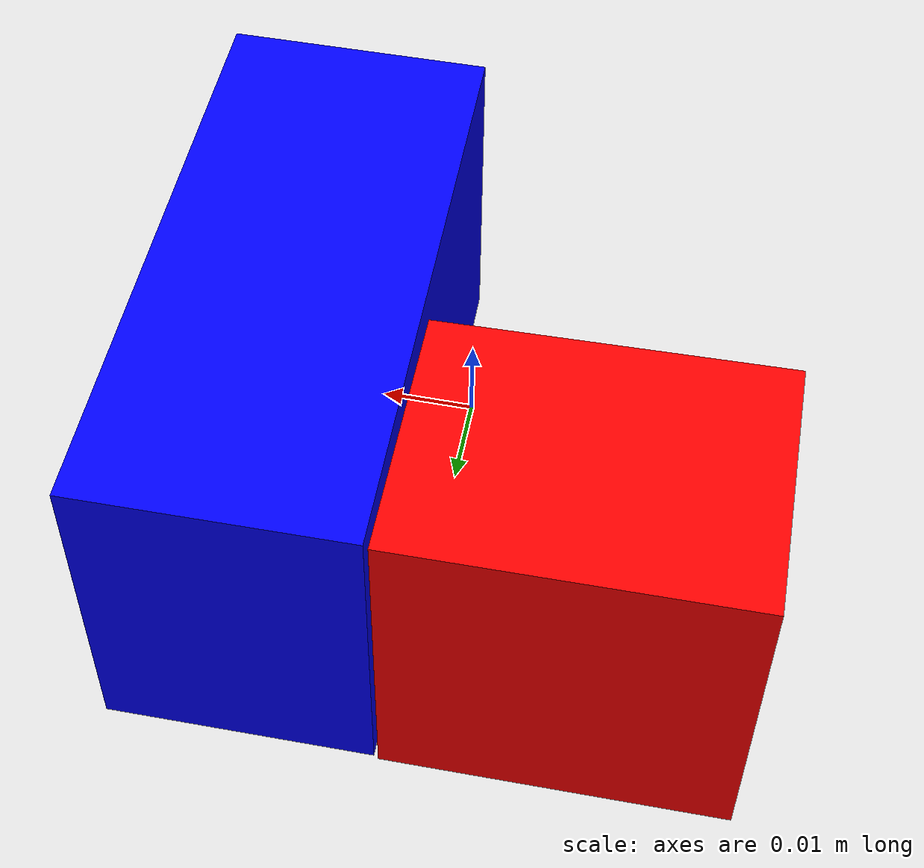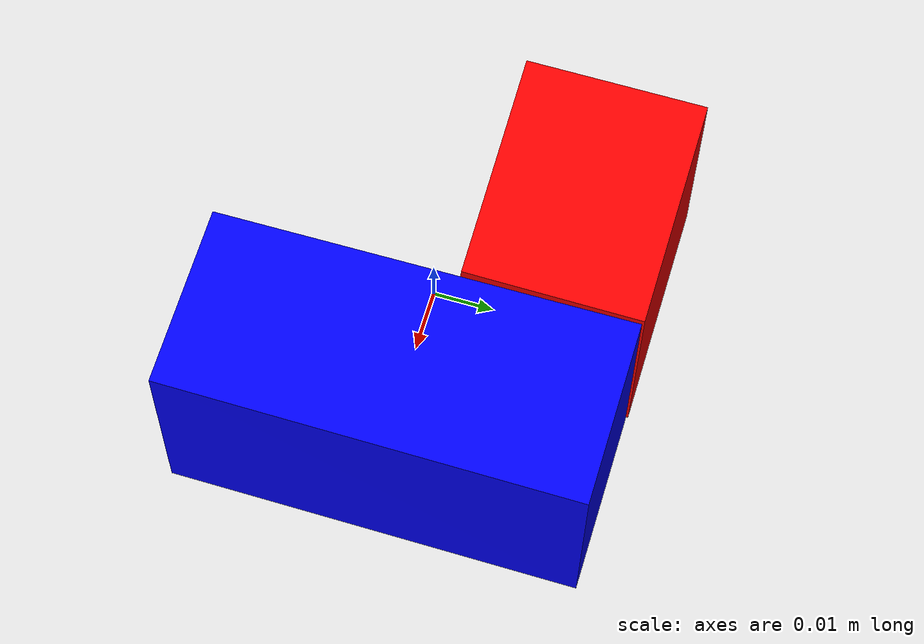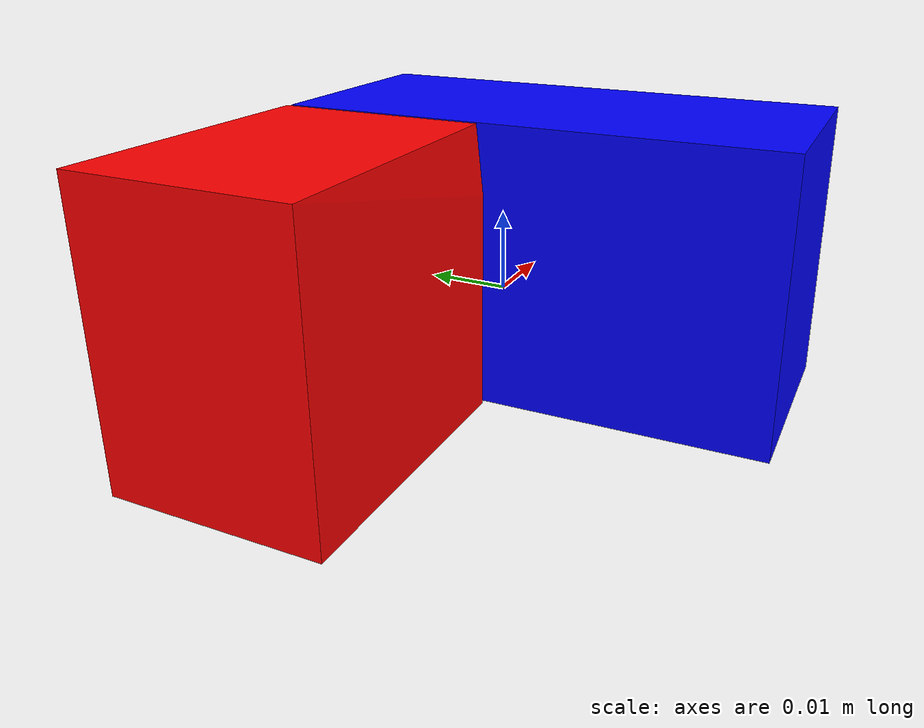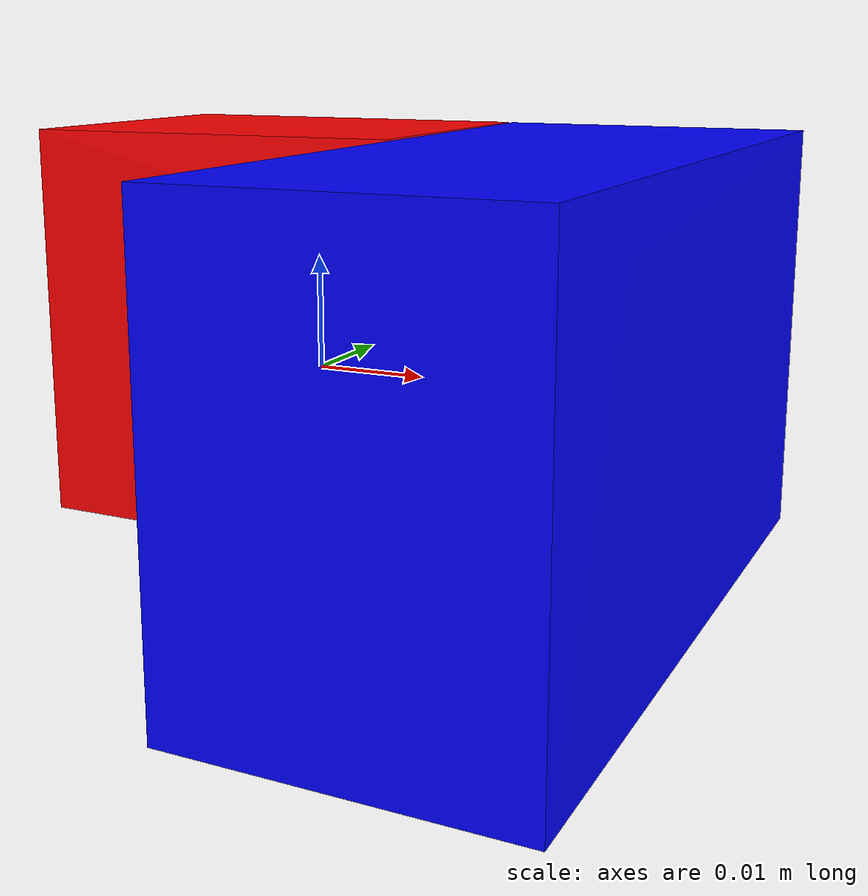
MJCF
<mujoco model="L2">
  <asset>
    <mesh file="meshes/L_0.stl" name="L0_mesh"/>
    <mesh file="meshes/L_1.stl" name="L1_mesh"/>
  </asset>
  <worldbody>
    <body>
      <body name="collision">
        <geom pos="0 0 0" mesh="L0_mesh" type="mesh" solimp="0.998 0.998 0.001" solref="0.001 1" density="100" friction="0.95 0.3 0.1" rgba="1 0 0 1" group="1" condim="4"/>
        <geom pos="0 0 0" mesh="L1_mesh" type="mesh" solimp="0.998 0.998 0.001" solref="0.001 1" density="100" friction="0.95 0.3 0.1" rgba="0 0 1 1" group="1" condim="4"/>
      </body>
      <body name="visual">
        <geom pos="0 0 0" mesh="L0_mesh" type="mesh" rgba="1 0 0 1"  conaffinity="0" contype="0" group="0" mass="0.0001"/>
        <geom pos="0 0 0" mesh="L1_mesh" type="mesh" rgba="0 0 1 1"  conaffinity="0" contype="0" group="0" mass="0.0001"/>
      </body>
      <site rgba="0 0 0 0" size="0.005" pos="0 0 -0.06" name="bottom_site"/>
      <site rgba="0 0 0 0" size="0.005" pos="0 0 0.04" name="top_site"/>
      <site rgba="0 0 0 0" size="0.005" pos="0.025 0.025 0" name="horizontal_radius_site"/>
    </body>
  </worldbody>
</mujoco>
